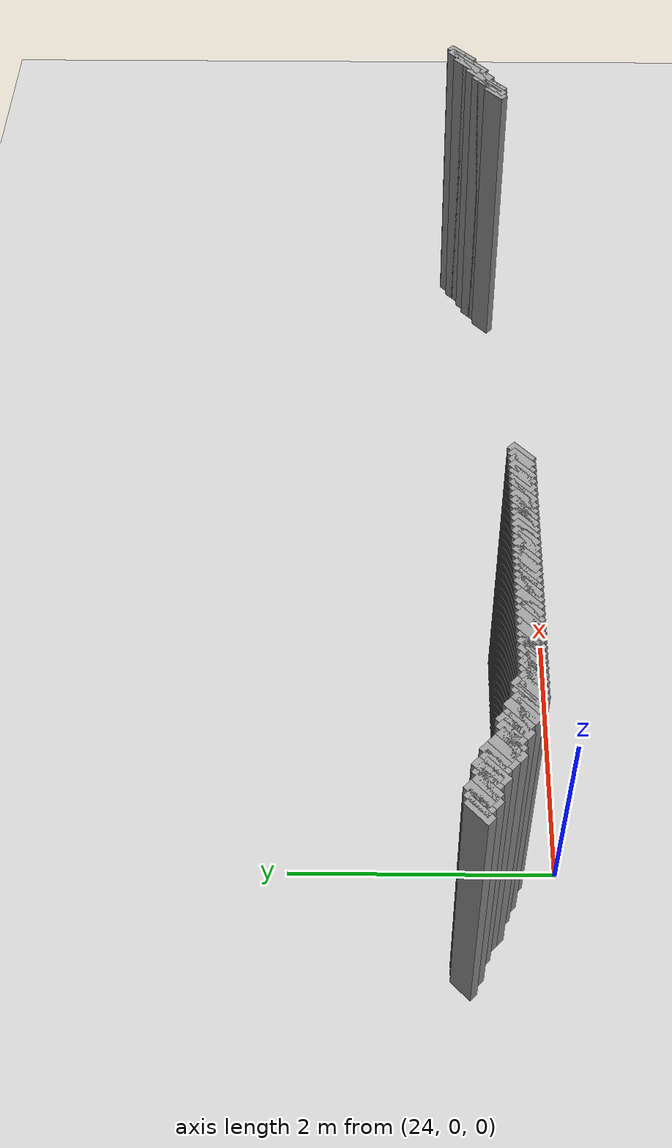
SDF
<sdf version="1.5">
 <world name="default">
  <include><uri>model://ground_plane</uri></include>
  <include><uri>model://sun</uri></include>
  <model name="grey_wall_5200">
   <static>1</static>
   <link name="link">
    <pose>23.15 0.7  1.4 0 0 -0.785398163397</pose>
    <collision name="collision"><geometry><box><size>0.0707106781187 .2  2.8</size></box></geometry></collision>
    <visual name="visual">
     <cast_shadows>0</cast_shadows>
     <geometry><box><size>0.0707106781187 .2  2.8</size></box></geometry>
     <material>
      <script>
       <uri>model://grey_wall/materials/scripts</uri>
       <uri>model://grey_wall/materials/textures</uri>
       <name>vrc/grey_wall</name>
      </script>
     </material>
    </visual>
   </link>
  </model>
  <model name="grey_wall_5201">
   <static>1</static>
   <link name="link">
    <pose>23.2 0.7  1.4 0 0 -0.785398163397</pose>
    <collision name="collision"><geometry><box><size>0.0707106781187 .2  2.8</size></box></geometry></collision>
    <visual name="visual">
     <cast_shadows>0</cast_shadows>
     <geometry><box><size>0.0707106781187 .2  2.8</size></box></geometry>
     <material>
      <script>
       <uri>model://grey_wall/materials/scripts</uri>
       <uri>model://grey_wall/materials/textures</uri>
       <name>vrc/grey_wall</name>
      </script>
     </material>
    </visual>
   </link>
  </model>
  <model name="grey_wall_5202">
   <static>1</static>
   <link name="link">
    <pose>23.25 0.7  1.4 0 0 -0.785398163397</pose>
    <collision name="collision"><geometry><box><size>0.0707106781187 .2  2.8</size></box></geometry></collision>
    <visual name="visual">
     <cast_shadows>0</cast_shadows>
     <geometry><box><size>0.0707106781187 .2  2.8</size></box></geometry>
     <material>
      <script>
       <uri>model://grey_wall/materials/scripts</uri>
       <uri>model://grey_wall/materials/textures</uri>
       <name>vrc/grey_wall</name>
      </script>
     </material>
    </visual>
   </link>
  </model>
  <model name="grey_wall_5203">
   <static>1</static>
   <link name="link">
    <pose>30.2 0.7  1.4 0 0 -0.785398163397</pose>
    <collision name="collision"><geometry><box><size>0.0707106781187 .2  2.8</size></box></geometry></collision>
    <visual name="visual">
     <cast_shadows>0</cast_shadows>
     <geometry><box><size>0.0707106781187 .2  2.8</size></box></geometry>
     <material>
      <script>
       <uri>model://grey_wall/materials/scripts</uri>
       <uri>model://grey_wall/materials/textures</uri>
       <name>vrc/grey_wall</name>
      </script>
     </material>
    </visual>
   </link>
  </model>
  <model name="grey_wall_5204">
   <static>1</static>
   <link name="link">
    <pose>30.25 0.7  1.4 0 0 -0.785398163397</pose>
    <collision name="collision"><geometry><box><size>0.0707106781187 .2  2.8</size></box></geometry></collision>
    <visual name="visual">
     <cast_shadows>0</cast_shadows>
     <geometry><box><size>0.0707106781187 .2  2.8</size></box></geometry>
     <material>
      <script>
       <uri>model://grey_wall/materials/scripts</uri>
       <uri>model://grey_wall/materials/textures</uri>
       <name>vrc/grey_wall</name>
      </script>
     </material>
    </visual>
   </link>
  </model>
  <model name="grey_wall_5205">
   <static>1</static>
   <link name="link">
    <pose>23.25 0.65  1.4 0 0 -0.785398163397</pose>
    <collision name="collision"><geometry><box><size>0.0707106781187 .2  2.8</size></box></geometry></collision>
    <visual name="visual">
     <cast_shadows>0</cast_shadows>
     <geometry><box><size>0.0707106781187 .2  2.8</size></box></geometry>
     <material>
      <script>
       <uri>model://grey_wall/materials/scripts</uri>
       <uri>model://grey_wall/materials/textures</uri>
       <name>vrc/grey_wall</name>
      </script>
     </material>
    </visual>
   </link>
  </model>
  <model name="grey_wall_5206">
   <static>1</static>
   <link name="link">
    <pose>23.3 0.65  1.4 0 0 -0.785398163397</pose>
    <collision name="collision"><geometry><box><size>0.0707106781187 .2  2.8</size></box></geometry></collision>
    <visual name="visual">
     <cast_shadows>0</cast_shadows>
     <geometry><box><size>0.0707106781187 .2  2.8</size></box></geometry>
     <material>
      <script>
       <uri>model://grey_wall/materials/scripts</uri>
       <uri>model://grey_wall/materials/textures</uri>
       <name>vrc/grey_wall</name>
      </script>
     </material>
    </visual>
   </link>
  </model>
  <model name="grey_wall_5207">
   <static>1</static>
   <link name="link">
    <pose>23.35 0.65  1.4 0 0 -0.785398163397</pose>
    <collision name="collision"><geometry><box><size>0.0707106781187 .2  2.8</size></box></geometry></collision>
    <visual name="visual">
     <cast_shadows>0</cast_shadows>
     <geometry><box><size>0.0707106781187 .2  2.8</size></box></geometry>
     <material>
      <script>
       <uri>model://grey_wall/materials/scripts</uri>
       <uri>model://grey_wall/materials/textures</uri>
       <name>vrc/grey_wall</name>
      </script>
     </material>
    </visual>
   </link>
  </model>
  <model name="grey_wall_5208">
   <static>1</static>
   <link name="link">
    <pose>23.4 0.65  1.4 0 0 -0.785398163397</pose>
    <collision name="collision"><geometry><box><size>0.0707106781187 .2  2.8</size></box></geometry></collision>
    <visual name="visual">
     <cast_shadows>0</cast_shadows>
     <geometry><box><size>0.0707106781187 .2  2.8</size></box></geometry>
     <material>
      <script>
       <uri>model://grey_wall/materials/scripts</uri>
       <uri>model://grey_wall/materials/textures</uri>
       <name>vrc/grey_wall</name>
      </script>
     </material>
    </visual>
   </link>
  </model>
  <model name="grey_wall_5209">
   <static>1</static>
   <link name="link">
    <pose>30.1 0.65  1.4 0 0 -0.785398163397</pose>
    <collision name="collision"><geometry><box><size>0.0707106781187 .2  2.8</size></box></geometry></collision>
    <visual name="visual">
     <cast_shadows>0</cast_shadows>
     <geometry><box><size>0.0707106781187 .2  2.8</size></box></geometry>
     <material>
      <script>
       <uri>model://grey_wall/materials/scripts</uri>
       <uri>model://grey_wall/materials/textures</uri>
       <name>vrc/grey_wall</name>
      </script>
     </material>
    </visual>
   </link>
  </model>
  <model name="grey_wall_5210">
   <static>1</static>
   <link name="link">
    <pose>30.15 0.65  1.4 0 0 -0.785398163397</pose>
    <collision name="collision"><geometry><box><size>0.0707106781187 .2  2.8</size></box></geometry></collision>
    <visual name="visual">
     <cast_shadows>0</cast_shadows>
     <geometry><box><size>0.0707106781187 .2  2.8</size></box></geometry>
     <material>
      <script>
       <uri>model://grey_wall/materials/scripts</uri>
       <uri>model://grey_wall/materials/textures</uri>
       <name>vrc/grey_wall</name>
      </script>
     </material>
    </visual>
   </link>
  </model>
  <model name="grey_wall_5211">
   <static>1</static>
   <link name="link">
    <pose>30.2 0.65  1.4 0 0 -0.785398163397</pose>
    <collision name="collision"><geometry><box><size>0.0707106781187 .2  2.8</size></box></geometry></collision>
    <visual name="visual">
     <cast_shadows>0</cast_shadows>
     <geometry><box><size>0.0707106781187 .2  2.8</size></box></geometry>
     <material>
      <script>
       <uri>model://grey_wall/materials/scripts</uri>
       <uri>model://grey_wall/materials/textures</uri>
       <name>vrc/grey_wall</name>
      </script>
     </material>
    </visual>
   </link>
  </model>
  <model name="grey_wall_5212">
   <static>1</static>
   <link name="link">
    <pose>23.4 0.6  1.4 0 0 -0.785398163397</pose>
    <collision name="collision"><geometry><box><size>0.0707106781187 .2  2.8</size></box></geometry></collision>
    <visual name="visual">
     <cast_shadows>0</cast_shadows>
     <geometry><box><size>0.0707106781187 .2  2.8</size></box></geometry>
     <material>
      <script>
       <uri>model://grey_wall/materials/scripts</uri>
       <uri>model://grey_wall/materials/textures</uri>
       <name>vrc/grey_wall</name>
      </script>
     </material>
    </visual>
   </link>
  </model>
  <model name="grey_wall_5213">
   <static>1</static>
   <link name="link">
    <pose>23.45 0.6  1.4 0 0 -0.785398163397</pose>
    <collision name="collision"><geometry><box><size>0.0707106781187 .2  2.8</size></box></geometry></collision>
    <visual name="visual">
     <cast_shadows>0</cast_shadows>
     <geometry><box><size>0.0707106781187 .2  2.8</size></box></geometry>
     <material>
      <script>
       <uri>model://grey_wall/materials/scripts</uri>
       <uri>model://grey_wall/materials/textures</uri>
       <name>vrc/grey_wall</name>
      </script>
     </material>
    </visual>
   </link>
  </model>
  <model name="grey_wall_5214">
   <static>1</static>
   <link name="link">
    <pose>23.5 0.6  1.4 0 0 -0.785398163397</pose>
    <collision name="collision"><geometry><box><size>0.0707106781187 .2  2.8</size></box></geometry></collision>
    <visual name="visual">
     <cast_shadows>0</cast_shadows>
     <geometry><box><size>0.0707106781187 .2  2.8</size></box></geometry>
     <material>
      <script>
       <uri>model://grey_wall/materials/scripts</uri>
       <uri>model://grey_wall/materials/textures</uri>
       <name>vrc/grey_wall</name>
      </script>
     </material>
    </visual>
   </link>
  </model>
  <model name="grey_wall_5215">
   <static>1</static>
   <link name="link">
    <pose>30.05 0.6  1.4 0 0 -0.785398163397</pose>
    <collision name="collision"><geometry><box><size>0.0707106781187 .2  2.8</size></box></geometry></collision>
    <visual name="visual">
     <cast_shadows>0</cast_shadows>
     <geometry><box><size>0.0707106781187 .2  2.8</size></box></geometry>
     <material>
      <script>
       <uri>model://grey_wall/materials/scripts</uri>
       <uri>model://grey_wall/materials/textures</uri>
       <name>vrc/grey_wall</name>
      </script>
     </material>
    </visual>
   </link>
  </model>
  <model name="grey_wall_5216">
   <static>1</static>
   <link name="link">
    <pose>30.1 0.6  1.4 0 0 -0.785398163397</pose>
    <collision name="collision"><geometry><box><size>0.0707106781187 .2  2.8</size></box></geometry></collision>
    <visual name="visual">
     <cast_shadows>0</cast_shadows>
     <geometry><box><size>0.0707106781187 .2  2.8</size></box></geometry>
     <material>
      <script>
       <uri>model://grey_wall/materials/scripts</uri>
       <uri>model://grey_wall/materials/textures</uri>
       <name>vrc/grey_wall</name>
      </script>
     </material>
    </visual>
   </link>
  </model>
  <model name="grey_wall_5217">
   <static>1</static>
   <link name="link">
    <pose>23.5 0.55  1.4 0 0 -0.785398163397</pose>
    <collision name="collision"><geometry><box><size>0.0707106781187 .2  2.8</size></box></geometry></collision>
    <visual name="visual">
     <cast_shadows>0</cast_shadows>
     <geometry><box><size>0.0707106781187 .2  2.8</size></box></geometry>
     <material>
      <script>
       <uri>model://grey_wall/materials/scripts</uri>
       <uri>model://grey_wall/materials/textures</uri>
       <name>vrc/grey_wall</name>
      </script>
     </material>
    </visual>
   </link>
  </model>
  <model name="grey_wall_5218">
   <static>1</static>
   <link name="link">
    <pose>23.55 0.55  1.4 0 0 -0.785398163397</pose>
    <collision name="collision"><geometry><box><size>0.0707106781187 .2  2.8</size></box></geometry></collision>
    <visual name="visual">
     <cast_shadows>0</cast_shadows>
     <geometry><box><size>0.0707106781187 .2  2.8</size></box></geometry>
     <material>
      <script>
       <uri>model://grey_wall/materials/scripts</uri>
       <uri>model://grey_wall/materials/textures</uri>
       <name>vrc/grey_wall</name>
      </script>
     </material>
    </visual>
   </link>
  </model>
  <model name="grey_wall_5219">
   <static>1</static>
   <link name="link">
    <pose>29.95 0.55  1.4 0 0 -0.785398163397</pose>
    <collision name="collision"><geometry><box><size>0.0707106781187 .2  2.8</size></box></geometry></collision>
    <visual name="visual">
     <cast_shadows>0</cast_shadows>
     <geometry><box><size>0.0707106781187 .2  2.8</size></box></geometry>
     <material>
      <script>
       <uri>model://grey_wall/materials/scripts</uri>
       <uri>model://grey_wall/materials/textures</uri>
       <name>vrc/grey_wall</name>
      </script>
     </material>
    </visual>
   </link>
  </model>
  <model name="grey_wall_5220">
   <static>1</static>
   <link name="link">
    <pose>30.0 0.55  1.4 0 0 -0.785398163397</pose>
    <collision name="collision"><geometry><box><size>0.0707106781187 .2  2.8</size></box></geometry></collision>
    <visual name="visual">
     <cast_shadows>0</cast_shadows>
     <geometry><box><size>0.0707106781187 .2  2.8</size></box></geometry>
     <material>
      <script>
       <uri>model://grey_wall/materials/scripts</uri>
       <uri>model://grey_wall/materials/textures</uri>
       <name>vrc/grey_wall</name>
      </script>
     </material>
    </visual>
   </link>
  </model>
  <model name="grey_wall_5221">
   <static>1</static>
   <link name="link">
    <pose>30.05 0.55  1.4 0 0 -0.785398163397</pose>
    <collision name="collision"><geometry><box><size>0.0707106781187 .2  2.8</size></box></geometry></collision>
    <visual name="visual">
     <cast_shadows>0</cast_shadows>
     <geometry><box><size>0.0707106781187 .2  2.8</size></box></geometry>
     <material>
      <script>
       <uri>model://grey_wall/materials/scripts</uri>
       <uri>model://grey_wall/materials/textures</uri>
       <name>vrc/grey_wall</name>
      </script>
     </material>
    </visual>
   </link>
  </model>
  <model name="grey_wall_5222">
   <static>1</static>
   <link name="link">
    <pose>23.55 0.5  1.4 0 0 -0.785398163397</pose>
    <collision name="collision"><geometry><box><size>0.0707106781187 .2  2.8</size></box></geometry></collision>
    <visual name="visual">
     <cast_shadows>0</cast_shadows>
     <geometry><box><size>0.0707106781187 .2  2.8</size></box></geometry>
     <material>
      <script>
       <uri>model://grey_wall/materials/scripts</uri>
       <uri>model://grey_wall/materials/textures</uri>
       <name>vrc/grey_wall</name>
      </script>
     </material>
    </visual>
   </link>
  </model>
  <model name="grey_wall_5223">
   <static>1</static>
   <link name="link">
    <pose>23.6 0.5  1.4 0 0 -0.785398163397</pose>
    <collision name="collision"><geometry><box><size>0.0707106781187 .2  2.8</size></box></geometry></collision>
    <visual name="visual">
     <cast_shadows>0</cast_shadows>
     <geometry><box><size>0.0707106781187 .2  2.8</size></box></geometry>
     <material>
      <script>
       <uri>model://grey_wall/materials/scripts</uri>
       <uri>model://grey_wall/materials/textures</uri>
       <name>vrc/grey_wall</name>
      </script>
     </material>
    </visual>
   </link>
  </model>
  <model name="grey_wall_5224">
   <static>1</static>
   <link name="link">
    <pose>23.65 0.5  1.4 0 0 -0.785398163397</pose>
    <collision name="collision"><geometry><box><size>0.0707106781187 .2  2.8</size></box></geometry></collision>
    <visual name="visual">
     <cast_shadows>0</cast_shadows>
     <geometry><box><size>0.0707106781187 .2  2.8</size></box></geometry>
     <material>
      <script>
       <uri>model://grey_wall/materials/scripts</uri>
       <uri>model://grey_wall/materials/textures</uri>
       <name>vrc/grey_wall</name>
      </script>
     </material>
    </visual>
   </link>
  </model>
  <model name="grey_wall_5225">
   <static>1</static>
   <link name="link">
    <pose>23.7 0.5  1.4 0 0 -0.785398163397</pose>
    <collision name="collision"><geometry><box><size>0.0707106781187 .2  2.8</size></box></geometry></collision>
    <visual name="visual">
     <cast_shadows>0</cast_shadows>
     <geometry><box><size>0.0707106781187 .2  2.8</size></box></geometry>
     <material>
      <script>
       <uri>model://grey_wall/materials/scripts</uri>
       <uri>model://grey_wall/materials/textures</uri>
       <name>vrc/grey_wall</name>
      </script>
     </material>
    </visual>
   </link>
  </model>
  <model name="grey_wall_5226">
   <static>1</static>
   <link name="link">
    <pose>29.85 0.5  1.4 0 0 -0.785398163397</pose>
    <collision name="collision"><geometry><box><size>0.0707106781187 .2  2.8</size></box></geometry></collision>
    <visual name="visual">
     <cast_shadows>0</cast_shadows>
     <geometry><box><size>0.0707106781187 .2  2.8</size></box></geometry>
     <material>
      <script>
       <uri>model://grey_wall/materials/scripts</uri>
       <uri>model://grey_wall/materials/textures</uri>
       <name>vrc/grey_wall</name>
      </script>
     </material>
    </visual>
   </link>
  </model>
  <model name="grey_wall_5227">
   <static>1</static>
   <link name="link">
    <pose>29.9 0.5  1.4 0 0 -0.785398163397</pose>
    <collision name="collision"><geometry><box><size>0.0707106781187 .2  2.8</size></box></geometry></collision>
    <visual name="visual">
     <cast_shadows>0</cast_shadows>
     <geometry><box><size>0.0707106781187 .2  2.8</size></box></geometry>
     <material>
      <script>
       <uri>model://grey_wall/materials/scripts</uri>
       <uri>model://grey_wall/materials/textures</uri>
       <name>vrc/grey_wall</name>
      </script>
     </material>
    </visual>
   </link>
  </model>
  <model name="grey_wall_5228">
   <static>1</static>
   <link name="link">
    <pose>29.95 0.5  1.4 0 0 -0.785398163397</pose>
    <collision name="collision"><geometry><box><size>0.0707106781187 .2  2.8</size></box></geometry></collision>
    <visual name="visual">
     <cast_shadows>0</cast_shadows>
     <geometry><box><size>0.0707106781187 .2  2.8</size></box></geometry>
     <material>
      <script>
       <uri>model://grey_wall/materials/scripts</uri>
       <uri>model://grey_wall/materials/textures</uri>
       <name>vrc/grey_wall</name>
      </script>
     </material>
    </visual>
   </link>
  </model>
  <model name="grey_wall_5229">
   <static>1</static>
   <link name="link">
    <pose>23.7 0.45  1.4 0 0 -0.785398163397</pose>
    <collision name="collision"><geometry><box><size>0.0707106781187 .2  2.8</size></box></geometry></collision>
    <visual name="visual">
     <cast_shadows>0</cast_shadows>
     <geometry><box><size>0.0707106781187 .2  2.8</size></box></geometry>
     <material>
      <script>
       <uri>model://grey_wall/materials/scripts</uri>
       <uri>model://grey_wall/materials/textures</uri>
       <name>vrc/grey_wall</name>
      </script>
     </material>
    </visual>
   </link>
  </model>
  <model name="grey_wall_5230">
   <static>1</static>
   <link name="link">
    <pose>23.75 0.45  1.4 0 0 -0.785398163397</pose>
    <collision name="collision"><geometry><box><size>0.0707106781187 .2  2.8</size></box></geometry></collision>
    <visual name="visual">
     <cast_shadows>0</cast_shadows>
     <geometry><box><size>0.0707106781187 .2  2.8</size></box></geometry>
     <material>
      <script>
       <uri>model://grey_wall/materials/scripts</uri>
       <uri>model://grey_wall/materials/textures</uri>
       <name>vrc/grey_wall</name>
      </script>
     </material>
    </visual>
   </link>
  </model>
  <model name="grey_wall_5231">
   <static>1</static>
   <link name="link">
    <pose>23.8 0.45  1.4 0 0 -0.785398163397</pose>
    <collision name="collision"><geometry><box><size>0.0707106781187 .2  2.8</size></box></geometry></collision>
    <visual name="visual">
     <cast_shadows>0</cast_shadows>
     <geometry><box><size>0.0707106781187 .2  2.8</size></box></geometry>
     <material>
      <script>
       <uri>model://grey_wall/materials/scripts</uri>
       <uri>model://grey_wall/materials/textures</uri>
       <name>vrc/grey_wall</name>
      </script>
     </material>
    </visual>
   </link>
  </model>
  <model name="grey_wall_5232">
   <static>1</static>
   <link name="link">
    <pose>29.8 0.45  1.4 0 0 -0.785398163397</pose>
    <collision name="collision"><geometry><box><size>0.0707106781187 .2  2.8</size></box></geometry></collision>
    <visual name="visual">
     <cast_shadows>0</cast_shadows>
     <geometry><box><size>0.0707106781187 .2  2.8</size></box></geometry>
     <material>
      <script>
       <uri>model://grey_wall/materials/scripts</uri>
       <uri>model://grey_wall/materials/textures</uri>
       <name>vrc/grey_wall</name>
      </script>
     </material>
    </visual>
   </link>
  </model>
  <model name="grey_wall_5233">
   <static>1</static>
   <link name="link">
    <pose>29.85 0.45  1.4 0 0 -0.785398163397</pose>
    <collision name="collision"><geometry><box><size>0.0707106781187 .2  2.8</size></box></geometry></collision>
    <visual name="visual">
     <cast_shadows>0</cast_shadows>
     <geometry><box><size>0.0707106781187 .2  2.8</size></box></geometry>
     <material>
      <script>
       <uri>model://grey_wall/materials/scripts</uri>
       <uri>model://grey_wall/materials/textures</uri>
       <name>vrc/grey_wall</name>
      </script>
     </material>
    </visual>
   </link>
  </model>
  <model name="grey_wall_5234">
   <static>1</static>
   <link name="link">
    <pose>23.8 0.4  1.4 0 0 -0.785398163397</pose>
    <collision name="collision"><geometry><box><size>0.0707106781187 .2  2.8</size></box></geometry></collision>
    <visual name="visual">
     <cast_shadows>0</cast_shadows>
     <geometry><box><size>0.0707106781187 .2  2.8</size></box></geometry>
     <material>
      <script>
       <uri>model://grey_wall/materials/scripts</uri>
       <uri>model://grey_wall/materials/textures</uri>
       <name>vrc/grey_wall</name>
      </script>
     </material>
    </visual>
   </link>
  </model>
  <model name="grey_wall_5235">
   <static>1</static>
   <link name="link">
    <pose>23.85 0.4  1.4 0 0 -0.785398163397</pose>
    <collision name="collision"><geometry><box><size>0.0707106781187 .2  2.8</size></box></geometry></collision>
    <visual name="visual">
     <cast_shadows>0</cast_shadows>
     <geometry><box><size>0.0707106781187 .2  2.8</size></box></geometry>
     <material>
      <script>
       <uri>model://grey_wall/materials/scripts</uri>
       <uri>model://grey_wall/materials/textures</uri>
       <name>vrc/grey_wall</name>
      </script>
     </material>
    </visual>
   </link>
  </model>
  <model name="grey_wall_5236">
   <static>1</static>
   <link name="link">
    <pose>23.9 0.4  1.4 0 0 -0.785398163397</pose>
    <collision name="collision"><geometry><box><size>0.0707106781187 .2  2.8</size></box></geometry></collision>
    <visual name="visual">
     <cast_shadows>0</cast_shadows>
     <geometry><box><size>0.0707106781187 .2  2.8</size></box></geometry>
     <material>
      <script>
       <uri>model://grey_wall/materials/scripts</uri>
       <uri>model://grey_wall/materials/textures</uri>
       <name>vrc/grey_wall</name>
      </script>
     </material>
    </visual>
   </link>
  </model>
  <model name="grey_wall_5237">
   <static>1</static>
   <link name="link">
    <pose>23.95 0.4  1.4 0 0 -0.785398163397</pose>
    <collision name="collision"><geometry><box><size>0.0707106781187 .2  2.8</size></box></geometry></collision>
    <visual name="visual">
     <cast_shadows>0</cast_shadows>
     <geometry><box><size>0.0707106781187 .2  2.8</size></box></geometry>
     <material>
      <script>
       <uri>model://grey_wall/materials/scripts</uri>
       <uri>model://grey_wall/materials/textures</uri>
       <name>vrc/grey_wall</name>
      </script>
     </material>
    </visual>
   </link>
  </model>
  <model name="grey_wall_5238">
   <static>1</static>
   <link name="link">
    <pose>29.7 0.4  1.4 0 0 -0.785398163397</pose>
    <collision name="collision"><geometry><box><size>0.0707106781187 .2  2.8</size></box></geometry></collision>
    <visual name="visual">
     <cast_shadows>0</cast_shadows>
     <geometry><box><size>0.0707106781187 .2  2.8</size></box></geometry>
     <material>
      <script>
       <uri>model://grey_wall/materials/scripts</uri>
       <uri>model://grey_wall/materials/textures</uri>
       <name>vrc/grey_wall</name>
      </script>
     </material>
    </visual>
   </link>
  </model>
  <model name="grey_wall_5239">
   <static>1</static>
   <link name="link">
    <pose>29.75 0.4  1.4 0 0 -0.785398163397</pose>
    <collision name="collision"><geometry><box><size>0.0707106781187 .2  2.8</size></box></geometry></collision>
    <visual name="visual">
     <cast_shadows>0</cast_shadows>
     <geometry><box><size>0.0707106781187 .2  2.8</size></box></geometry>
     <material>
      <script>
       <uri>model://grey_wall/materials/scripts</uri>
       <uri>model://grey_wall/materials/textures</uri>
       <name>vrc/grey_wall</name>
      </script>
     </material>
    </visual>
   </link>
  </model>
  <model name="grey_wall_5240">
   <static>1</static>
   <link name="link">
    <pose>29.8 0.4  1.4 0 0 -0.785398163397</pose>
    <collision name="collision"><geometry><box><size>0.0707106781187 .2  2.8</size></box></geometry></collision>
    <visual name="visual">
     <cast_shadows>0</cast_shadows>
     <geometry><box><size>0.0707106781187 .2  2.8</size></box></geometry>
     <material>
      <script>
       <uri>model://grey_wall/materials/scripts</uri>
       <uri>model://grey_wall/materials/textures</uri>
       <name>vrc/grey_wall</name>
      </script>
     </material>
    </visual>
   </link>
  </model>
  <model name="grey_wall_5241">
   <static>1</static>
   <link name="link">
    <pose>23.95 0.35  1.4 0 0 -0.785398163397</pose>
    <collision name="collision"><geometry><box><size>0.0707106781187 .2  2.8</size></box></geometry></collision>
    <visual name="visual">
     <cast_shadows>0</cast_shadows>
     <geometry><box><size>0.0707106781187 .2  2.8</size></box></geometry>
     <material>
      <script>
       <uri>model://grey_wall/materials/scripts</uri>
       <uri>model://grey_wall/materials/textures</uri>
       <name>vrc/grey_wall</name>
      </script>
     </material>
    </visual>
   </link>
  </model>
  <model name="grey_wall_5242">
   <static>1</static>
   <link name="link">
    <pose>24.0 0.35  1.4 0 0 -0.785398163397</pose>
    <collision name="collision"><geometry><box><size>0.0707106781187 .2  2.8</size></box></geometry></collision>
    <visual name="visual">
     <cast_shadows>0</cast_shadows>
     <geometry><box><size>0.0707106781187 .2  2.8</size></box></geometry>
     <material>
      <script>
       <uri>model://grey_wall/materials/scripts</uri>
       <uri>model://grey_wall/materials/textures</uri>
       <name>vrc/grey_wall</name>
      </script>
     </material>
    </visual>
   </link>
  </model>
  <model name="grey_wall_5243">
   <static>1</static>
   <link name="link">
    <pose>24.05 0.35  1.4 0 0 -0.785398163397</pose>
    <collision name="collision"><geometry><box><size>0.0707106781187 .2  2.8</size></box></geometry></collision>
    <visual name="visual">
     <cast_shadows>0</cast_shadows>
     <geometry><box><size>0.0707106781187 .2  2.8</size></box></geometry>
     <material>
      <script>
       <uri>model://grey_wall/materials/scripts</uri>
       <uri>model://grey_wall/materials/textures</uri>
       <name>vrc/grey_wall</name>
      </script>
     </material>
    </visual>
   </link>
  </model>
  <model name="grey_wall_5244">
   <static>1</static>
   <link name="link">
    <pose>24.1 0.35  1.4 0 0 -0.785398163397</pose>
    <collision name="collision"><geometry><box><size>0.0707106781187 .2  2.8</size></box></geometry></collision>
    <visual name="visual">
     <cast_shadows>0</cast_shadows>
     <geometry><box><size>0.0707106781187 .2  2.8</size></box></geometry>
     <material>
      <script>
       <uri>model://grey_wall/materials/scripts</uri>
       <uri>model://grey_wall/materials/textures</uri>
       <name>vrc/grey_wall</name>
      </script>
     </material>
    </visual>
   </link>
  </model>
  <model name="grey_wall_5245">
   <static>1</static>
   <link name="link">
    <pose>24.15 0.35  1.4 0 0 -0.785398163397</pose>
    <collision name="collision"><geometry><box><size>0.0707106781187 .2  2.8</size></box></geometry></collision>
    <visual name="visual">
     <cast_shadows>0</cast_shadows>
     <geometry><box><size>0.0707106781187 .2  2.8</size></box></geometry>
     <material>
      <script>
       <uri>model://grey_wall/materials/scripts</uri>
       <uri>model://grey_wall/materials/textures</uri>
       <name>vrc/grey_wall</name>
      </script>
     </material>
    </visual>
   </link>
  </model>
  <model name="grey_wall_5246">
   <static>1</static>
   <link name="link">
    <pose>24.2 0.35  1.4 0 0 -0.785398163397</pose>
    <collision name="collision"><geometry><box><size>0.0707106781187 .2  2.8</size></box></geometry></collision>
    <visual name="visual">
     <cast_shadows>0</cast_shadows>
     <geometry><box><size>0.0707106781187 .2  2.8</size></box></geometry>
     <material>
      <script>
       <uri>model://grey_wall/materials/scripts</uri>
       <uri>model://grey_wall/materials/textures</uri>
       <name>vrc/grey_wall</name>
      </script>
     </material>
    </visual>
   </link>
  </model>
  <model name="grey_wall_5247">
   <static>1</static>
   <link name="link">
    <pose>24.25 0.35  1.4 0 0 -0.785398163397</pose>
    <collision name="collision"><geometry><box><size>0.0707106781187 .2  2.8</size></box></geometry></collision>
    <visual name="visual">
     <cast_shadows>0</cast_shadows>
     <geometry><box><size>0.0707106781187 .2  2.8</size></box></geometry>
     <material>
      <script>
       <uri>model://grey_wall/materials/scripts</uri>
       <uri>model://grey_wall/materials/textures</uri>
       <name>vrc/grey_wall</name>
      </script>
     </material>
    </visual>
   </link>
  </model>
  <model name="grey_wall_5248">
   <static>1</static>
   <link name="link">
    <pose>24.3 0.35  1.4 0 0 -0.785398163397</pose>
    <collision name="collision"><geometry><box><size>0.0707106781187 .2  2.8</size></box></geometry></collision>
    <visual name="visual">
     <cast_shadows>0</cast_shadows>
     <geometry><box><size>0.0707106781187 .2  2.8</size></box></geometry>
     <material>
      <script>
       <uri>model://grey_wall/materials/scripts</uri>
       <uri>model://grey_wall/materials/textures</uri>
       <name>vrc/grey_wall</name>
      </script>
     </material>
    </visual>
   </link>
  </model>
  <model name="grey_wall_5249">
   <static>1</static>
   <link name="link">
    <pose>24.35 0.35  1.4 0 0 -0.785398163397</pose>
    <collision name="collision"><geometry><box><size>0.0707106781187 .2  2.8</size></box></geometry></collision>
    <visual name="visual">
     <cast_shadows>0</cast_shadows>
     <geometry><box><size>0.0707106781187 .2  2.8</size></box></geometry>
     <material>
      <script>
       <uri>model://grey_wall/materials/scripts</uri>
       <uri>model://grey_wall/materials/textures</uri>
       <name>vrc/grey_wall</name>
      </script>
     </material>
    </visual>
   </link>
  </model>
  <model name="grey_wall_5250">
   <static>1</static>
   <link name="link">
    <pose>24.4 0.35  1.4 0 0 -0.785398163397</pose>
    <collision name="collision"><geometry><box><size>0.0707106781187 .2  2.8</size></box></geometry></collision>
    <visual name="visual">
     <cast_shadows>0</cast_shadows>
     <geometry><box><size>0.0707106781187 .2  2.8</size></box></geometry>
     <material>
      <script>
       <uri>model://grey_wall/materials/scripts</uri>
       <uri>model://grey_wall/materials/textures</uri>
       <name>vrc/grey_wall</name>
      </script>
     </material>
    </visual>
   </link>
  </model>
  <model name="grey_wall_5251">
   <static>1</static>
   <link name="link">
    <pose>24.45 0.35  1.4 0 0 -0.785398163397</pose>
    <collision name="collision"><geometry><box><size>0.0707106781187 .2  2.8</size></box></geometry></collision>
    <visual name="visual">
     <cast_shadows>0</cast_shadows>
     <geometry><box><size>0.0707106781187 .2  2.8</size></box></geometry>
     <material>
      <script>
       <uri>model://grey_wall/materials/scripts</uri>
       <uri>model://grey_wall/materials/textures</uri>
       <name>vrc/grey_wall</name>
      </script>
     </material>
    </visual>
   </link>
  </model>
  <model name="grey_wall_5252">
   <static>1</static>
   <link name="link">
    <pose>24.5 0.35  1.4 0 0 -0.785398163397</pose>
    <collision name="collision"><geometry><box><size>0.0707106781187 .2  2.8</size></box></geometry></collision>
    <visual name="visual">
     <cast_shadows>0</cast_shadows>
     <geometry><box><size>0.0707106781187 .2  2.8</size></box></geometry>
     <material>
      <script>
       <uri>model://grey_wall/materials/scripts</uri>
       <uri>model://grey_wall/materials/textures</uri>
       <name>vrc/grey_wall</name>
      </script>
     </material>
    </visual>
   </link>
  </model>
  <model name="grey_wall_5253">
   <static>1</static>
   <link name="link">
    <pose>24.55 0.35  1.4 0 0 -0.785398163397</pose>
    <collision name="collision"><geometry><box><size>0.0707106781187 .2  2.8</size></box></geometry></collision>
    <visual name="visual">
     <cast_shadows>0</cast_shadows>
     <geometry><box><size>0.0707106781187 .2  2.8</size></box></geometry>
     <material>
      <script>
       <uri>model://grey_wall/materials/scripts</uri>
       <uri>model://grey_wall/materials/textures</uri>
       <name>vrc/grey_wall</name>
      </script>
     </material>
    </visual>
   </link>
  </model>
  <model name="grey_wall_5254">
   <static>1</static>
   <link name="link">
    <pose>24.6 0.35  1.4 0 0 -0.785398163397</pose>
    <collision name="collision"><geometry><box><size>0.0707106781187 .2  2.8</size></box></geometry></collision>
    <visual name="visual">
     <cast_shadows>0</cast_shadows>
     <geometry><box><size>0.0707106781187 .2  2.8</size></box></geometry>
     <material>
      <script>
       <uri>model://grey_wall/materials/scripts</uri>
       <uri>model://grey_wall/materials/textures</uri>
       <name>vrc/grey_wall</name>
      </script>
     </material>
    </visual>
   </link>
  </model>
  <model name="grey_wall_5255">
   <static>1</static>
   <link name="link">
    <pose>24.65 0.35  1.4 0 0 -0.785398163397</pose>
    <collision name="collision"><geometry><box><size>0.0707106781187 .2  2.8</size></box></geometry></collision>
    <visual name="visual">
     <cast_shadows>0</cast_shadows>
     <geometry><box><size>0.0707106781187 .2  2.8</size></box></geometry>
     <material>
      <script>
       <uri>model://grey_wall/materials/scripts</uri>
       <uri>model://grey_wall/materials/textures</uri>
       <name>vrc/grey_wall</name>
      </script>
     </material>
    </visual>
   </link>
  </model>
  <model name="grey_wall_5256">
   <static>1</static>
   <link name="link">
    <pose>24.7 0.35  1.4 0 0 -0.785398163397</pose>
    <collision name="collision"><geometry><box><size>0.0707106781187 .2  2.8</size></box></geometry></collision>
    <visual name="visual">
     <cast_shadows>0</cast_shadows>
     <geometry><box><size>0.0707106781187 .2  2.8</size></box></geometry>
     <material>
      <script>
       <uri>model://grey_wall/materials/scripts</uri>
       <uri>model://grey_wall/materials/textures</uri>
       <name>vrc/grey_wall</name>
      </script>
     </material>
    </visual>
   </link>
  </model>
  <model name="grey_wall_5257">
   <static>1</static>
   <link name="link">
    <pose>24.75 0.35  1.4 0 0 -0.785398163397</pose>
    <collision name="collision"><geometry><box><size>0.0707106781187 .2  2.8</size></box></geometry></collision>
    <visual name="visual">
     <cast_shadows>0</cast_shadows>
     <geometry><box><size>0.0707106781187 .2  2.8</size></box></geometry>
     <material>
      <script>
       <uri>model://grey_wall/materials/scripts</uri>
       <uri>model://grey_wall/materials/textures</uri>
       <name>vrc/grey_wall</name>
      </script>
     </material>
    </visual>
   </link>
  </model>
  <model name="grey_wall_5258">
   <static>1</static>
   <link name="link">
    <pose>24.8 0.35  1.4 0 0 -0.785398163397</pose>
    <collision name="collision"><geometry><box><size>0.0707106781187 .2  2.8</size></box></geometry></collision>
    <visual name="visual">
     <cast_shadows>0</cast_shadows>
     <geometry><box><size>0.0707106781187 .2  2.8</size></box></geometry>
     <material>
      <script>
       <uri>model://grey_wall/materials/scripts</uri>
       <uri>model://grey_wall/materials/textures</uri>
       <name>vrc/grey_wall</name>
      </script>
     </material>
    </visual>
   </link>
  </model>
  <model name="grey_wall_5259">
   <static>1</static>
   <link name="link">
    <pose>24.85 0.35  1.4 0 0 -0.785398163397</pose>
    <collision name="collision"><geometry><box><size>0.0707106781187 .2  2.8</size></box></geometry></collision>
    <visual name="visual">
     <cast_shadows>0</cast_shadows>
     <geometry><box><size>0.0707106781187 .2  2.8</size></box></geometry>
     <material>
      <script>
       <uri>model://grey_wall/materials/scripts</uri>
       <uri>model://grey_wall/materials/textures</uri>
       <name>vrc/grey_wall</name>
      </script>
     </material>
    </visual>
   </link>
  </model>
  <model name="grey_wall_5260">
   <static>1</static>
   <link name="link">
    <pose>24.9 0.35  1.4 0 0 -0.785398163397</pose>
    <collision name="collision"><geometry><box><size>0.0707106781187 .2  2.8</size></box></geometry></collision>
    <visual name="visual">
     <cast_shadows>0</cast_shadows>
     <geometry><box><size>0.0707106781187 .2  2.8</size></box></geometry>
     <material>
      <script>
       <uri>model://grey_wall/materials/scripts</uri>
       <uri>model://grey_wall/materials/textures</uri>
       <name>vrc/grey_wall</name>
      </script>
     </material>
    </visual>
   </link>
  </model>
  <model name="grey_wall_5261">
   <static>1</static>
   <link name="link">
    <pose>24.95 0.35  1.4 0 0 -0.785398163397</pose>
    <collision name="collision"><geometry><box><size>0.0707106781187 .2  2.8</size></box></geometry></collision>
    <visual name="visual">
     <cast_shadows>0</cast_shadows>
     <geometry><box><size>0.0707106781187 .2  2.8</size></box></geometry>
     <material>
      <script>
       <uri>model://grey_wall/materials/scripts</uri>
       <uri>model://grey_wall/materials/textures</uri>
       <name>vrc/grey_wall</name>
      </script>
     </material>
    </visual>
   </link>
  </model>
  <model name="grey_wall_5262">
   <static>1</static>
   <link name="link">
    <pose>25.0 0.35  1.4 0 0 -0.785398163397</pose>
    <collision name="collision"><geometry><box><size>0.0707106781187 .2  2.8</size></box></geometry></collision>
    <visual name="visual">
     <cast_shadows>0</cast_shadows>
     <geometry><box><size>0.0707106781187 .2  2.8</size></box></geometry>
     <material>
      <script>
       <uri>model://grey_wall/materials/scripts</uri>
       <uri>model://grey_wall/materials/textures</uri>
       <name>vrc/grey_wall</name>
      </script>
     </material>
    </visual>
   </link>
  </model>
  <model name="grey_wall_5263">
   <static>1</static>
   <link name="link">
    <pose>25.05 0.35  1.4 0 0 -0.785398163397</pose>
    <collision name="collision"><geometry><box><size>0.0707106781187 .2  2.8</size></box></geometry></collision>
    <visual name="visual">
     <cast_shadows>0</cast_shadows>
     <geometry><box><size>0.0707106781187 .2  2.8</size></box></geometry>
     <material>
      <script>
       <uri>model://grey_wall/materials/scripts</uri>
       <uri>model://grey_wall/materials/textures</uri>
       <name>vrc/grey_wall</name>
      </script>
     </material>
    </visual>
   </link>
  </model>
  <model name="grey_wall_5264">
   <static>1</static>
   <link name="link">
    <pose>25.1 0.35  1.4 0 0 -0.785398163397</pose>
    <collision name="collision"><geometry><box><size>0.0707106781187 .2  2.8</size></box></geometry></collision>
    <visual name="visual">
     <cast_shadows>0</cast_shadows>
     <geometry><box><size>0.0707106781187 .2  2.8</size></box></geometry>
     <material>
      <script>
       <uri>model://grey_wall/materials/scripts</uri>
       <uri>model://grey_wall/materials/textures</uri>
       <name>vrc/grey_wall</name>
      </script>
     </material>
    </visual>
   </link>
  </model>
  <model name="grey_wall_5265">
   <static>1</static>
   <link name="link">
    <pose>25.15 0.35  1.4 0 0 -0.785398163397</pose>
    <collision name="collision"><geometry><box><size>0.0707106781187 .2  2.8</size></box></geometry></collision>
    <visual name="visual">
     <cast_shadows>0</cast_shadows>
     <geometry><box><size>0.0707106781187 .2  2.8</size></box></geometry>
     <material>
      <script>
       <uri>model://grey_wall/materials/scripts</uri>
       <uri>model://grey_wall/materials/textures</uri>
       <name>vrc/grey_wall</name>
      </script>
     </material>
    </visual>
   </link>
  </model>
  <model name="grey_wall_5266">
   <static>1</static>
   <link name="link">
    <pose>25.2 0.35  1.4 0 0 -0.785398163397</pose>
    <collision name="collision"><geometry><box><size>0.0707106781187 .2  2.8</size></box></geometry></collision>
    <visual name="visual">
     <cast_shadows>0</cast_shadows>
     <geometry><box><size>0.0707106781187 .2  2.8</size></box></geometry>
     <material>
      <script>
       <uri>model://grey_wall/materials/scripts</uri>
       <uri>model://grey_wall/materials/textures</uri>
       <name>vrc/grey_wall</name>
      </script>
     </material>
    </visual>
   </link>
  </model>
  <model name="grey_wall_5267">
   <static>1</static>
   <link name="link">
    <pose>25.25 0.35  1.4 0 0 -0.785398163397</pose>
    <collision name="collision"><geometry><box><size>0.0707106781187 .2  2.8</size></box></geometry></collision>
    <visual name="visual">
     <cast_shadows>0</cast_shadows>
     <geometry><box><size>0.0707106781187 .2  2.8</size></box></geometry>
     <material>
      <script>
       <uri>model://grey_wall/materials/scripts</uri>
       <uri>model://grey_wall/materials/textures</uri>
       <name>vrc/grey_wall</name>
      </script>
     </material>
    </visual>
   </link>
  </model>
  <model name="grey_wall_5268">
   <static>1</static>
   <link name="link">
    <pose>25.3 0.35  1.4 0 0 -0.785398163397</pose>
    <collision name="collision"><geometry><box><size>0.0707106781187 .2  2.8</size></box></geometry></collision>
    <visual name="visual">
     <cast_shadows>0</cast_shadows>
     <geometry><box><size>0.0707106781187 .2  2.8</size></box></geometry>
     <material>
      <script>
       <uri>model://grey_wall/materials/scripts</uri>
       <uri>model://grey_wall/materials/textures</uri>
       <name>vrc/grey_wall</name>
      </script>
     </material>
    </visual>
   </link>
  </model>
  <model name="grey_wall_5269">
   <static>1</static>
   <link name="link">
    <pose>25.35 0.35  1.4 0 0 -0.785398163397</pose>
    <collision name="collision"><geometry><box><size>0.0707106781187 .2  2.8</size></box></geometry></collision>
    <visual name="visual">
     <cast_shadows>0</cast_shadows>
     <geometry><box><size>0.0707106781187 .2  2.8</size></box></geometry>
     <material>
      <script>
       <uri>model://grey_wall/materials/scripts</uri>
       <uri>model://grey_wall/materials/textures</uri>
       <name>vrc/grey_wall</name>
      </script>
     </material>
    </visual>
   </link>
  </model>
  <model name="grey_wall_5270">
   <static>1</static>
   <link name="link">
    <pose>25.4 0.35  1.4 0 0 -0.785398163397</pose>
    <collision name="collision"><geometry><box><size>0.0707106781187 .2  2.8</size></box></geometry></collision>
    <visual name="visual">
     <cast_shadows>0</cast_shadows>
     <geometry><box><size>0.0707106781187 .2  2.8</size></box></geometry>
     <material>
      <script>
       <uri>model://grey_wall/materials/scripts</uri>
       <uri>model://grey_wall/materials/textures</uri>
       <name>vrc/grey_wall</name>
      </script>
     </material>
    </visual>
   </link>
  </model>
  <model name="grey_wall_5271">
   <static>1</static>
   <link name="link">
    <pose>25.45 0.35  1.4 0 0 -0.785398163397</pose>
    <collision name="collision"><geometry><box><size>0.0707106781187 .2  2.8</size></box></geometry></collision>
    <visual name="visual">
     <cast_shadows>0</cast_shadows>
     <geometry><box><size>0.0707106781187 .2  2.8</size></box></geometry>
     <material>
      <script>
       <uri>model://grey_wall/materials/scripts</uri>
       <uri>model://grey_wall/materials/textures</uri>
       <name>vrc/grey_wall</name>
      </script>
     </material>
    </visual>
   </link>
  </model>
  <model name="grey_wall_5272">
   <static>1</static>
   <link name="link">
    <pose>25.5 0.35  1.4 0 0 -0.785398163397</pose>
    <collision name="collision"><geometry><box><size>0.0707106781187 .2  2.8</size></box></geometry></collision>
    <visual name="visual">
     <cast_shadows>0</cast_shadows>
     <geometry><box><size>0.0707106781187 .2  2.8</size></box></geometry>
     <material>
      <script>
       <uri>model://grey_wall/materials/scripts</uri>
       <uri>model://grey_wall/materials/textures</uri>
       <name>vrc/grey_wall</name>
      </script>
     </material>
    </visual>
   </link>
  </model>
  <model name="grey_wall_5273">
   <static>1</static>
   <link name="link">
    <pose>25.55 0.35  1.4 0 0 -0.785398163397</pose>
    <collision name="collision"><geometry><box><size>0.0707106781187 .2  2.8</size></box></geometry></collision>
    <visual name="visual">
     <cast_shadows>0</cast_shadows>
     <geometry><box><size>0.0707106781187 .2  2.8</size></box></geometry>
     <material>
      <script>
       <uri>model://grey_wall/materials/scripts</uri>
       <uri>model://grey_wall/materials/textures</uri>
       <name>vrc/grey_wall</name>
      </script>
     </material>
    </visual>
   </link>
  </model>
  <model name="grey_wall_5274">
   <static>1</static>
   <link name="link">
    <pose>25.6 0.35  1.4 0 0 -0.785398163397</pose>
    <collision name="collision"><geometry><box><size>0.0707106781187 .2  2.8</size></box></geometry></collision>
    <visual name="visual">
     <cast_shadows>0</cast_shadows>
     <geometry><box><size>0.0707106781187 .2  2.8</size></box></geometry>
     <material>
      <script>
       <uri>model://grey_wall/materials/scripts</uri>
       <uri>model://grey_wall/materials/textures</uri>
       <name>vrc/grey_wall</name>
      </script>
     </material>
    </visual>
   </link>
  </model>
  <model name="grey_wall_5275">
   <static>1</static>
   <link name="link">
    <pose>25.65 0.35  1.4 0 0 -0.785398163397</pose>
    <collision name="collision"><geometry><box><size>0.0707106781187 .2  2.8</size></box></geometry></collision>
    <visual name="visual">
     <cast_shadows>0</cast_shadows>
     <geometry><box><size>0.0707106781187 .2  2.8</size></box></geometry>
     <material>
      <script>
       <uri>model://grey_wall/materials/scripts</uri>
       <uri>model://grey_wall/materials/textures</uri>
       <name>vrc/grey_wall</name>
      </script>
     </material>
    </visual>
   </link>
  </model>
  <model name="grey_wall_5276">
   <static>1</static>
   <link name="link">
    <pose>25.7 0.35  1.4 0 0 -0.785398163397</pose>
    <collision name="collision"><geometry><box><size>0.0707106781187 .2  2.8</size></box></geometry></collision>
    <visual name="visual">
     <cast_shadows>0</cast_shadows>
     <geometry><box><size>0.0707106781187 .2  2.8</size></box></geometry>
     <material>
      <script>
       <uri>model://grey_wall/materials/scripts</uri>
       <uri>model://grey_wall/materials/textures</uri>
       <name>vrc/grey_wall</name>
      </script>
     </material>
    </visual>
   </link>
  </model>
  <model name="grey_wall_5277">
   <static>1</static>
   <link name="link">
    <pose>25.75 0.35  1.4 0 0 -0.785398163397</pose>
    <collision name="collision"><geometry><box><size>0.0707106781187 .2  2.8</size></box></geometry></collision>
    <visual name="visual">
     <cast_shadows>0</cast_shadows>
     <geometry><box><size>0.0707106781187 .2  2.8</size></box></geometry>
     <material>
      <script>
       <uri>model://grey_wall/materials/scripts</uri>
       <uri>model://grey_wall/materials/textures</uri>
       <name>vrc/grey_wall</name>
      </script>
     </material>
    </visual>
   </link>
  </model>
  <model name="grey_wall_5278">
   <static>1</static>
   <link name="link">
    <pose>25.8 0.35  1.4 0 0 -0.785398163397</pose>
    <collision name="collision"><geometry><box><size>0.0707106781187 .2  2.8</size></box></geometry></collision>
    <visual name="visual">
     <cast_shadows>0</cast_shadows>
     <geometry><box><size>0.0707106781187 .2  2.8</size></box></geometry>
     <material>
      <script>
       <uri>model://grey_wall/materials/scripts</uri>
       <uri>model://grey_wall/materials/textures</uri>
       <name>vrc/grey_wall</name>
      </script>
     </material>
    </visual>
   </link>
  </model>
 </world>
</sdf>
